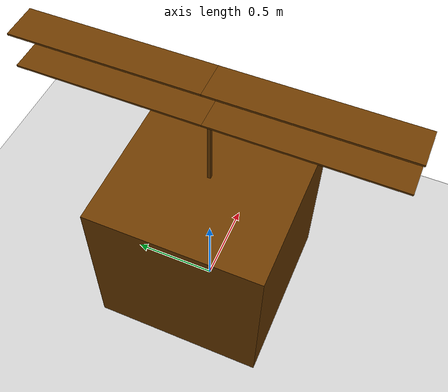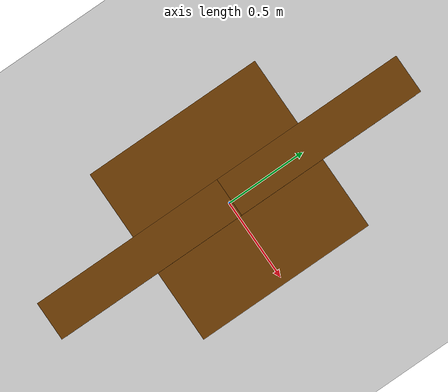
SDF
<?xml version="1.0" ?>
<sdf version="1.4">
  <world name="default">
    <physics type="ode">
      <gravity>0.0 0.0 -10.0</gravity>
      <ode>
        <solver>
          <type>quick</type>
          <iters>50</iters>
          <sor>0.8</sor>
        </solver>
        <constraints>
          <cfm>0.0</cfm>
          <erp>0.2</erp>
          <contact_max_correcting_vel>0.1</contact_max_correcting_vel>
          <contact_surface_layer>0.0</contact_surface_layer>
        </constraints>
      </ode>
      <real_time_update_rate>0</real_time_update_rate>
      <max_step_size>0.001</max_step_size>
    </physics>
    <include>
      <uri>model://sun</uri>
    </include>
    <include>
      <uri>model://ground_plane</uri>
    </include>

    <wind>
      <linear_velocity>0 0 0</linear_velocity>
    </wind>

    <!-- Load the plugin for the wind -->
    <plugin name="wind" filename="libWindPlugin.so">
      <magnitude>
        <time_for_rise>10</time_for_rise>
        <sin>
          <amplitude_percent>0.05</amplitude_percent>
          <period>60</period>
        </sin>
        <noise type="gaussian">
         <mean>0</mean>
         <stddev>0.0002</stddev>
        </noise>
      </magnitude>
      <direction>
        <time_for_rise>30</time_for_rise>
        <sin>
          <amplitude>5</amplitude>
          <period>20</period>
        </sin>
        <noise type="gaussian">
         <mean>0</mean>
         <stddev>0.03</stddev>
        </noise>
      </direction>
    </plugin>
    <model name="lift_drag_demo_model">
      <pose>0 0 0 0 0 0</pose>
      <static>false</static>
      <enable_wind>true</enable_wind>
      <link name="body">
        <pose>0 0 0.5 0 0 0</pose>
        <inertial>
          <pose>0.0 0.0 0.0 0.0 0.0 0.0</pose>
          <inertia>
            <ixx>1.8</ixx>
            <ixy>0.0</ixy>
            <ixz>0.0</ixz>
            <iyy>1.8</iyy>
            <iyz>0.0</iyz>
            <izz>1.8</izz>
          </inertia>
          <mass>10.0</mass>
        </inertial>
        <collision name="collision">
          <geometry>
            <box>
              <size>1 1 1</size>
            </box>
          </geometry>
          <surface>
            <friction>
              <ode>
                <mu>0.1</mu>
                <mu2>0.1</mu2>
              </ode>
            </friction>
          </surface>
        </collision>
        <visual name="visual">
          <geometry>
            <box>
              <size>1 1 1</size>
            </box>
          </geometry>
          <material>
            <ambient>0.2 0.2 0.2 1.0</ambient>
            <diffuse>.421 0.225 0.0 1.0</diffuse>
          </material>
        </visual>
      </link>
      <link name="rod_1">
        <pose>0 0 1.25 0 0 0</pose>
        <inertial>
          <pose>0.0 0.0 0 0.0 0.0 0.0</pose>
          <inertia>
            <ixx>0.012</ixx>
            <ixy>0.0</ixy>
            <ixz>0.0</ixz>
            <iyy>0.012</iyy>
            <iyz>0.0</iyz>
            <izz>0.0012</izz>
          </inertia>
          <mass>1.0</mass>
        </inertial>
        <collision name="collision">
          <geometry>
            <box>
              <size>0.02 0.02 0.5</size>
            </box>
          </geometry>
        </collision>
        <visual name="visual">
          <geometry>
            <box>
              <size>0.02 0.02 0.5</size>
            </box>
          </geometry>
          <material>
            <ambient>0.3 0.3 0.3 1.0</ambient>
            <diffuse>.421 0.225 0.0 1.0</diffuse>
          </material>
        </visual>
      </link>
      <link name="blade_1">
        <pose>0 0 1.5 0 0 0</pose>
        <inertial>
          <pose>0.0 0.5 0 0.0 0.0 0.0</pose>
          <inertia>
            <ixx>0.0000465</ixx>
            <ixy>0.0</ixy>
            <ixz>0.0</ixz>
            <iyy>0.0000006</iyy>
            <iyz>0.0</iyz>
            <izz>0.0000470</izz>
          </inertia>
          <mass>0.01</mass>
        </inertial>
        <collision name="collision">
          <pose>0.0 0.5 0 0.0 0.0 0.0</pose>
          <geometry>
            <box>
              <size>0.2 1.0 0.01</size>
            </box>
          </geometry>
        </collision>
        <visual name="visual">
          <pose>0.0 0.5 0 0.0 0.0 0.0</pose>
          <geometry>
            <box>
              <size>0.2 1.0 0.01</size>
            </box>
          </geometry>
          <material>
            <ambient>0.5 0.2 0.2 1.0</ambient>
            <diffuse>.421 0.225 0.0 1.0</diffuse>
          </material>
        </visual>
      </link>
      <link name="blade_2">
        <pose>0 0 1.5 0 0 3.141593</pose>
        <inertial>
          <pose>0.0 0.5 0 0.0 0.0 0.0</pose>
          <inertia>
            <ixx>0.0000465</ixx>
            <ixy>0.0</ixy>
            <ixz>0.0</ixz>
            <iyy>0.0000006</iyy>
            <iyz>0.0</iyz>
            <izz>0.0000470</izz>
          </inertia>
          <mass>0.01</mass>
        </inertial>
        <collision name="collision">
          <pose>0.0 0.5 0 0.0 0.0 0.0</pose>
          <geometry>
            <box>
              <size>0.2 1.0 0.01</size>
            </box>
          </geometry>
        </collision>
        <visual name="visual">
          <pose>0.0 0.5 0 0.0 0.0 0</pose>
          <geometry>
            <box>
              <size>0.2 1.0 0.01</size>
            </box>
          </geometry>
          <material>
            <ambient>0.2 0.5 0.2 1.0</ambient>
            <diffuse>.421 0.225 0.0 1.0</diffuse>
          </material>
        </visual>
      </link>
      <joint name="rod_1_joint" type="revolute">
        <parent>body</parent>
        <child>rod_1</child>
        <pose>0.0 0.0 0.0 0.0 0.0 0.0</pose>
        <axis>
          <limit>
            <lower>-1e16</lower>
            <upper>1e16</upper>
          </limit>
          <xyz>0.0 0.0 -1.0</xyz>
          <dynamics>
            <damping>0.0001</damping>
          </dynamics>
        </axis>
        <physics>
          <ode>
            <cfm_damping>1</cfm_damping>
          </ode>
        </physics>
      </joint>
      <joint name="blade_1_joint" type="revolute">
        <parent>rod_1</parent>
        <child>blade_1</child>
        <pose>0.0 0.0 0.0 0.0 0.0 0.0</pose>
        <axis>
          <limit>
            <lower>-0.0</lower>
            <upper>0.0</upper>
          </limit>
          <xyz>0.0 1.0 0.0</xyz>
          <dynamics>
            <damping>1.000000</damping>
          </dynamics>
        </axis>
        <physics>
          <ode>
            <cfm_damping>1</cfm_damping>
          </ode>
        </physics>
      </joint>
      <joint name="blade_2_joint" type="revolute">
        <parent>rod_1</parent>
        <child>blade_2</child>
        <pose>0.0 0.0 0.0 0.0 0.0 0.0</pose>
        <axis>
          <limit>
            <lower>-0.0</lower>
            <upper>0.0</upper>
          </limit>
          <xyz>0.0 -1.0 0.0</xyz>
          <dynamics>
            <damping>1.000000</damping>
          </dynamics>
        </axis>
        <physics>
          <ode>
            <cfm_damping>1</cfm_damping>
          </ode>
        </physics>
      </joint>

      <link name="rod_2">
        <pose>0 0 1.25 0 0 0</pose>
        <inertial>
          <pose>0.0 0.0 0 0.0 0.0 0.0</pose>
          <inertia>
            <ixx>0.012</ixx>
            <ixy>0.0</ixy>
            <ixz>0.0</ixz>
            <iyy>0.012</iyy>
            <iyz>0.0</iyz>
            <izz>0.0012</izz>
          </inertia>
          <mass>1.0</mass>
        </inertial>
        <collision name="collision">
          <geometry>
            <box>
              <size>0.02 0.02 0.5</size>
            </box>
          </geometry>
        </collision>
        <visual name="visual">
          <geometry>
            <box>
              <size>0.02 0.02 0.5</size>
            </box>
          </geometry>
          <material>
            <ambient>0.3 0.3 0.3 1.0</ambient>
            <diffuse>.421 0.225 0.0 1.0</diffuse>
          </material>
        </visual>
      </link>
      <joint name="rod_2_joint" type="revolute">
        <parent>body</parent>
        <child>rod_2</child>
        <pose>0.0 0.0 0.0 0.0 0.0 0.0</pose>
        <axis>
          <limit>
            <lower>-1e16</lower>
            <upper>1e16</upper>
          </limit>
          <xyz>0.0 0.0 1.0</xyz>
          <dynamics>
            <damping>0.0001</damping>
          </dynamics>
        </axis>
        <physics>
          <ode>
            <cfm_damping>1</cfm_damping>
          </ode>
        </physics>
      </joint>
      <link name="blade_3">
        <pose>0 0 1.7 0 0 0</pose>
        <inertial>
          <pose>0.0 0.5 0 0.0 0.0 0.0</pose>
          <inertia>
            <ixx>0.0000465</ixx>
            <ixy>0.0</ixy>
            <ixz>0.0</ixz>
            <iyy>0.0000006</iyy>
            <iyz>0.0</iyz>
            <izz>0.0000470</izz>
          </inertia>
          <mass>0.01</mass>
        </inertial>
        <collision name="collision">
          <pose>0.0 0.5 0 0.0 0.0 0.0</pose>
          <geometry>
            <box>
              <size>0.2 1.0 0.01</size>
            </box>
          </geometry>
        </collision>
        <visual name="visual">
          <pose>0.0 0.5 0 0.0 0.0 0.0</pose>
          <geometry>
            <box>
              <size>0.2 1.0 0.01</size>
            </box>
          </geometry>
          <material>
            <ambient>0.5 0.2 0.2 1.0</ambient>
            <diffuse>.421 0.225 0.0 1.0</diffuse>
          </material>
        </visual>
      </link>
      <link name="blade_4">
        <pose>0 0 1.7 0 0 3.141593</pose>
        <inertial>
          <pose>0.0 0.5 0 0.0 0.0 0.0</pose>
          <inertia>
            <ixx>0.0000465</ixx>
            <ixy>0.0</ixy>
            <ixz>0.0</ixz>
            <iyy>0.0000006</iyy>
            <iyz>0.0</iyz>
            <izz>0.0000470</izz>
          </inertia>
          <mass>0.01</mass>
        </inertial>
        <collision name="collision">
          <pose>0.0 0.5 0 0.0 0.0 0.0</pose>
          <geometry>
            <box>
              <size>0.2 1.0 0.01</size>
            </box>
          </geometry>
        </collision>
        <visual name="visual">
          <pose>0.0 0.5 0 0.0 0.0 0</pose>
          <geometry>
            <box>
              <size>0.2 1.0 0.01</size>
            </box>
          </geometry>
          <material>
            <ambient>0.2 0.5 0.2 1.0</ambient>
            <diffuse>.421 0.225 0.0 1.0</diffuse>
          </material>
        </visual>
      </link>
      <joint name="blade_3_joint" type="revolute">
        <parent>rod_2</parent>
        <child>blade_3</child>
        <pose>0.0 0.0 0.0 0.0 0.0 0.0</pose>
        <axis>
          <limit>
            <lower>-0.0</lower>
            <upper>0.0</upper>
          </limit>
          <xyz>0.0 1.0 0.0</xyz>
          <dynamics>
            <damping>1.000000</damping>
          </dynamics>
        </axis>
        <physics>
          <ode>
            <cfm_damping>1</cfm_damping>
          </ode>
        </physics>
      </joint>
      <joint name="blade_4_joint" type="revolute">
        <parent>rod_2</parent>
        <child>blade_4</child>
        <pose>0.0 0.0 0.0 0.0 0.0 0.0</pose>
        <axis>
          <limit>
            <lower>-0.0</lower>
            <upper>0.0</upper>
          </limit>
          <xyz>0.0 -1.0 0.0</xyz>
          <dynamics>
            <damping>1.000000</damping>
          </dynamics>
        </axis>
        <physics>
          <ode>
            <cfm_damping>1</cfm_damping>
          </ode>
        </physics>
      </joint>
      <joint name="gear_joint" type="gearbox">
          <parent>rod_1</parent>
          <child>rod_2</child>
          <gearbox_ratio>-1.0</gearbox_ratio>
          <gearbox_reference_body>body</gearbox_reference_body>
          <axis>
            <xyz>0.000000 0.000000 -1.000000</xyz>
          </axis>
          <axis2>
            <xyz>0.000000 0.000000 1.000000</xyz>
          </axis2>
      </joint>

      <plugin name="gazebo_blade_1" filename="libLiftDragPlugin.so">
        <a0>0.1</a0>
        <cla>0.100</cla>
        <cda>0.001</cda>
        <cma>0.00</cma>
        <cp>0.05 0.5 0</cp>
        <area>0.2</area>
        <air_density>1.2041</air_density>
        <forward>1 0 0</forward>
        <upward>0 0 1</upward>
        <link_name>lift_drag_demo_model::blade_1</link_name>
      </plugin>
      <plugin name="gazebo_blade_2" filename="libLiftDragPlugin.so">
        <a0>0.1</a0>
        <cla>0.100</cla>
        <cda>0.001</cda>
        <cma>0.00</cma>
        <cp>0.05 0.5 0</cp>
        <area>0.2</area>
        <air_density>1.2041</air_density>
        <forward>1 0 0</forward>
        <upward>0 0 1</upward>
        <link_name>lift_drag_demo_model::blade_2</link_name>
      </plugin>
      <plugin name="gazebo_blade_3" filename="libLiftDragPlugin.so">
        <a0>0.1</a0>
        <cla>0.100</cla>
        <cda>0.001</cda>
        <cma>0.00</cma>
        <cp>0.05 0.5 0</cp>
        <area>0.2</area>
        <air_density>1.2041</air_density>
        <forward>-1 0 0</forward>
        <upward>0 0 1</upward>
        <link_name>lift_drag_demo_model::blade_3</link_name>
      </plugin>
      <plugin name="gazebo_blade_4" filename="libLiftDragPlugin.so">
        <a0>0.1</a0>
        <cla>0.100</cla>
        <cda>0.001</cda>
        <cma>0.00</cma>
        <cp>0.05 0.5 0</cp>
        <area>0.2</area>
        <air_density>1.2041</air_density>
        <forward>-1 0 0</forward>
        <upward>0 0 1</upward>
        <link_name>lift_drag_demo_model::blade_4</link_name>
      </plugin>
    </model>
  </world>
</sdf>
